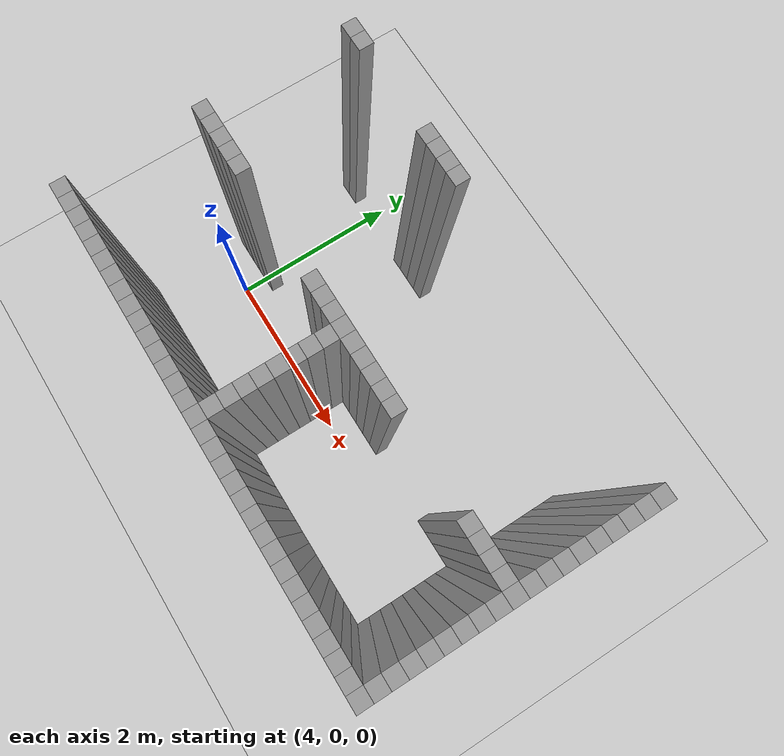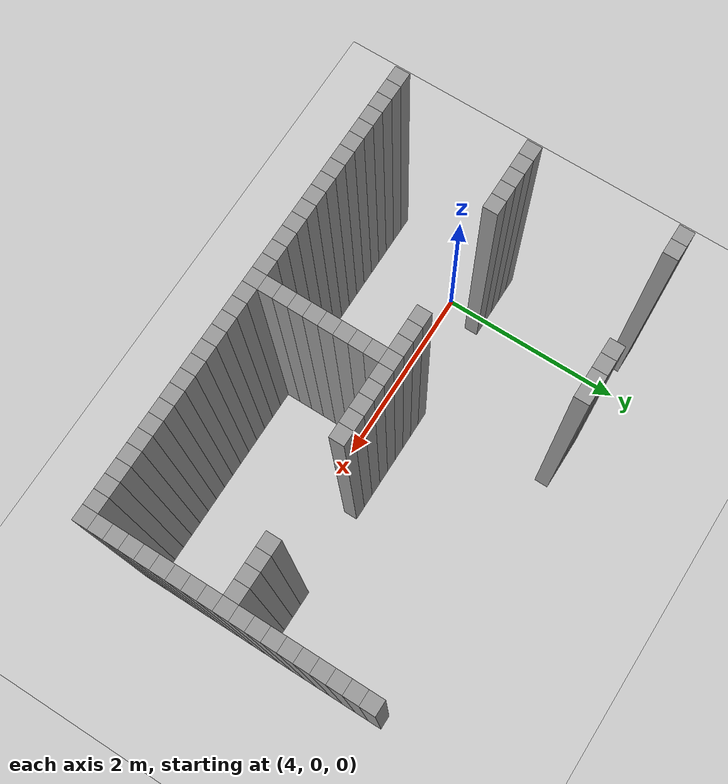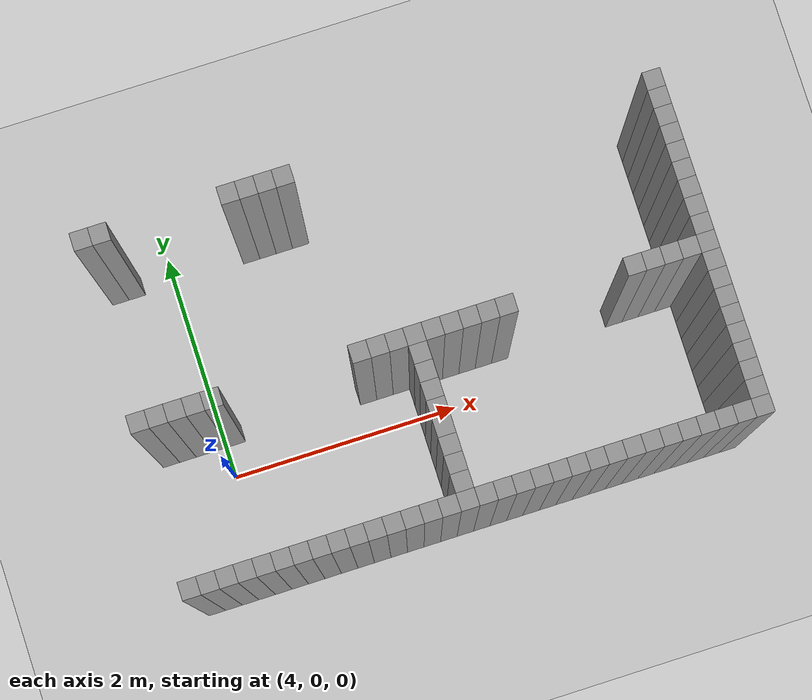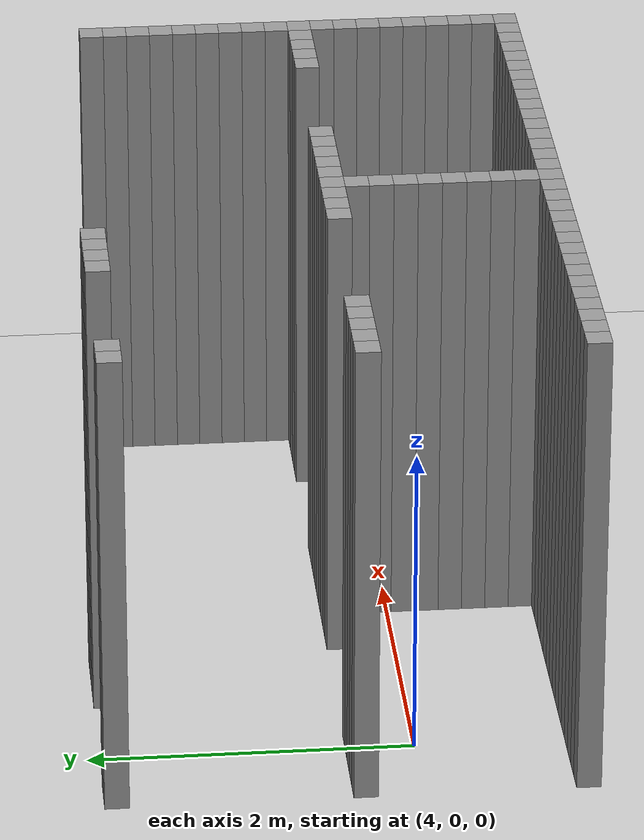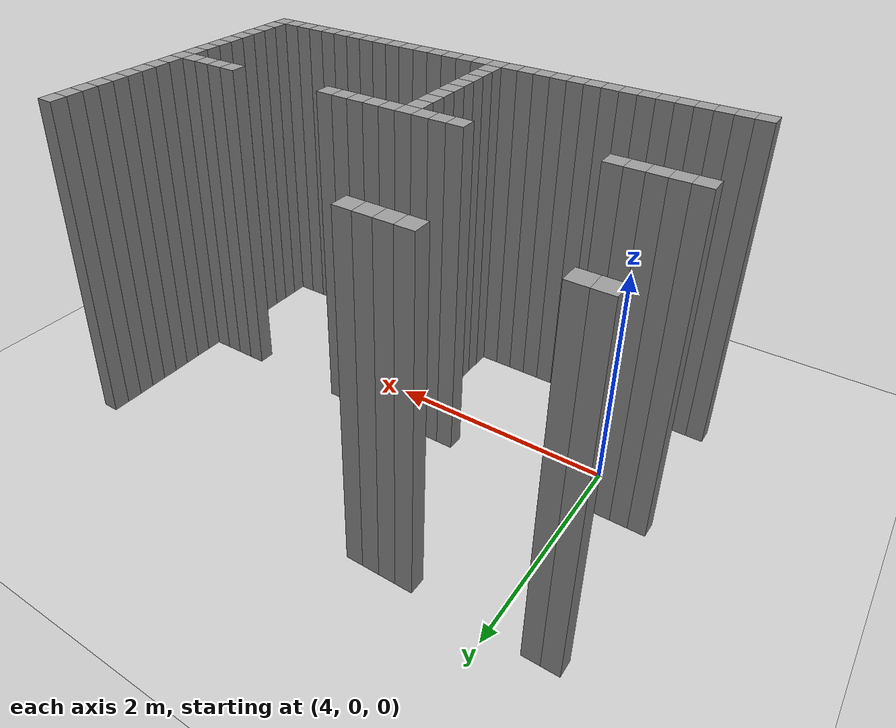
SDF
<sdf version="1.7">
 <world name="default">
  <model name="ground_plane">
   <static>1</static>
   <link name="link">
    <collision name="collision">
     <geometry><plane><normal>0 0 1</normal><size>100 100</size></plane></geometry>
     <surface>
      <contact><collide_bitmask>65535</collide_bitmask></contact>
      <friction><ode><mu>100</mu><mu2>50</mu2></ode></friction>
     </surface>
    </collision>
    <visual name="visual">
     <cast_shadows>0</cast_shadows>
     <geometry><plane><normal>0 0 1</normal><size>100 100</size></plane></geometry>
     <material>
      <script><uri>file://media/materials/scripts/gazebo.material</uri><name>Gazebo/Grey</name></script>
     </material>
    </visual>
   </link>
  </model>
  <model name="image45003">
   <pose>-1 -1 0 0 -0 0</pose>
   <link name="Wall_254">
    <collision name="Wall_254_Collision">
     <geometry><box><size>0.15 0.15 3</size></box></geometry>
     <pose>0 0 1.5 0 -0 0</pose>
    </collision>
    <visual name="Wall_254_Visual">
     <pose>0 0 1.5 0 -0 0</pose>
     <geometry><box><size>0.15 0.15 3</size></box></geometry>
     <material>
      <script><uri>file://media/materials/scripts/gazebo.material</uri><name>Gazebo/Grey</name></script>
      <ambient>1 1 1 1</ambient>
     </material>
     <meta><layer>0</layer></meta>
    </visual>
    <pose>4.5 0.0 0 0 -0 0</pose>
   </link>
   <link name="Wall_255">
    <collision name="Wall_255_Collision">
     <geometry><box><size>0.15 0.15 3</size></box></geometry>
     <pose>0 0 1.5 0 -0 0</pose>
    </collision>
    <visual name="Wall_255_Visual">
     <pose>0 0 1.5 0 -0 0</pose>
     <geometry><box><size>0.15 0.15 3</size></box></geometry>
     <material>
      <script><uri>file://media/materials/scripts/gazebo.material</uri><name>Gazebo/Grey</name></script>
      <ambient>1 1 1 1</ambient>
     </material>
     <meta><layer>0</layer></meta>
    </visual>
    <pose>4.5 1.3499999999999999 0 0 -0 0</pose>
   </link>
   <link name="Wall_256">
    <collision name="Wall_256_Collision">
     <geometry><box><size>0.15 0.15 3</size></box></geometry>
     <pose>0 0 1.5 0 -0 0</pose>
    </collision>
    <visual name="Wall_256_Visual">
     <pose>0 0 1.5 0 -0 0</pose>
     <geometry><box><size>0.15 0.15 3</size></box></geometry>
     <material>
      <script><uri>file://media/materials/scripts/gazebo.material</uri><name>Gazebo/Grey</name></script>
      <ambient>1 1 1 1</ambient>
     </material>
     <meta><layer>0</layer></meta>
    </visual>
    <pose>4.5 2.85 0 0 -0 0</pose>
   </link>
   <link name="Wall_260">
    <collision name="Wall_260_Collision">
     <geometry><box><size>0.15 0.15 3</size></box></geometry>
     <pose>0 0 1.5 0 -0 0</pose>
    </collision>
    <visual name="Wall_260_Visual">
     <pose>0 0 1.5 0 -0 0</pose>
     <geometry><box><size>0.15 0.15 3</size></box></geometry>
     <material>
      <script><uri>file://media/materials/scripts/gazebo.material</uri><name>Gazebo/Grey</name></script>
      <ambient>1 1 1 1</ambient>
     </material>
     <meta><layer>0</layer></meta>
    </visual>
    <pose>4.6499999999999995 0.0 0 0 -0 0</pose>
   </link>
   <link name="Wall_261">
    <collision name="Wall_261_Collision">
     <geometry><box><size>0.15 0.15 3</size></box></geometry>
     <pose>0 0 1.5 0 -0 0</pose>
    </collision>
    <visual name="Wall_261_Visual">
     <pose>0 0 1.5 0 -0 0</pose>
     <geometry><box><size>0.15 0.15 3</size></box></geometry>
     <material>
      <script><uri>file://media/materials/scripts/gazebo.material</uri><name>Gazebo/Grey</name></script>
      <ambient>1 1 1 1</ambient>
     </material>
     <meta><layer>0</layer></meta>
    </visual>
    <pose>4.6499999999999995 1.3499999999999999 0 0 -0 0</pose>
   </link>
   <link name="Wall_262">
    <collision name="Wall_262_Collision">
     <geometry><box><size>0.15 0.15 3</size></box></geometry>
     <pose>0 0 1.5 0 -0 0</pose>
    </collision>
    <visual name="Wall_262_Visual">
     <pose>0 0 1.5 0 -0 0</pose>
     <geometry><box><size>0.15 0.15 3</size></box></geometry>
     <material>
      <script><uri>file://media/materials/scripts/gazebo.material</uri><name>Gazebo/Grey</name></script>
      <ambient>1 1 1 1</ambient>
     </material>
     <meta><layer>0</layer></meta>
    </visual>
    <pose>4.6499999999999995 2.85 0 0 -0 0</pose>
   </link>
   <link name="Wall_266">
    <collision name="Wall_266_Collision">
     <geometry><box><size>0.15 0.15 3</size></box></geometry>
     <pose>0 0 1.5 0 -0 0</pose>
    </collision>
    <visual name="Wall_266_Visual">
     <pose>0 0 1.5 0 -0 0</pose>
     <geometry><box><size>0.15 0.15 3</size></box></geometry>
     <material>
      <script><uri>file://media/materials/scripts/gazebo.material</uri><name>Gazebo/Grey</name></script>
      <ambient>1 1 1 1</ambient>
     </material>
     <meta><layer>0</layer></meta>
    </visual>
    <pose>4.8 0.0 0 0 -0 0</pose>
   </link>
   <link name="Wall_267">
    <collision name="Wall_267_Collision">
     <geometry><box><size>0.15 0.15 3</size></box></geometry>
     <pose>0 0 1.5 0 -0 0</pose>
    </collision>
    <visual name="Wall_267_Visual">
     <pose>0 0 1.5 0 -0 0</pose>
     <geometry><box><size>0.15 0.15 3</size></box></geometry>
     <material>
      <script><uri>file://media/materials/scripts/gazebo.material</uri><name>Gazebo/Grey</name></script>
      <ambient>1 1 1 1</ambient>
     </material>
     <meta><layer>0</layer></meta>
    </visual>
    <pose>4.8 1.3499999999999999 0 0 -0 0</pose>
   </link>
   <link name="Wall_271">
    <collision name="Wall_271_Collision">
     <geometry><box><size>0.15 0.15 3</size></box></geometry>
     <pose>0 0 1.5 0 -0 0</pose>
    </collision>
    <visual name="Wall_271_Visual">
     <pose>0 0 1.5 0 -0 0</pose>
     <geometry><box><size>0.15 0.15 3</size></box></geometry>
     <material>
      <script><uri>file://media/materials/scripts/gazebo.material</uri><name>Gazebo/Grey</name></script>
      <ambient>1 1 1 1</ambient>
     </material>
     <meta><layer>0</layer></meta>
    </visual>
    <pose>4.95 0.0 0 0 -0 0</pose>
   </link>
   <link name="Wall_272">
    <collision name="Wall_272_Collision">
     <geometry><box><size>0.15 0.15 3</size></box></geometry>
     <pose>0 0 1.5 0 -0 0</pose>
    </collision>
    <visual name="Wall_272_Visual">
     <pose>0 0 1.5 0 -0 0</pose>
     <geometry><box><size>0.15 0.15 3</size></box></geometry>
     <material>
      <script><uri>file://media/materials/scripts/gazebo.material</uri><name>Gazebo/Grey</name></script>
      <ambient>1 1 1 1</ambient>
     </material>
     <meta><layer>0</layer></meta>
    </visual>
    <pose>4.95 1.3499999999999999 0 0 -0 0</pose>
   </link>
   <link name="Wall_276">
    <collision name="Wall_276_Collision">
     <geometry><box><size>0.15 0.15 3</size></box></geometry>
     <pose>0 0 1.5 0 -0 0</pose>
    </collision>
    <visual name="Wall_276_Visual">
     <pose>0 0 1.5 0 -0 0</pose>
     <geometry><box><size>0.15 0.15 3</size></box></geometry>
     <material>
      <script><uri>file://media/materials/scripts/gazebo.material</uri><name>Gazebo/Grey</name></script>
      <ambient>1 1 1 1</ambient>
     </material>
     <meta><layer>0</layer></meta>
    </visual>
    <pose>5.1 0.0 0 0 -0 0</pose>
   </link>
   <link name="Wall_277">
    <collision name="Wall_277_Collision">
     <geometry><box><size>0.15 0.15 3</size></box></geometry>
     <pose>0 0 1.5 0 -0 0</pose>
    </collision>
    <visual name="Wall_277_Visual">
     <pose>0 0 1.5 0 -0 0</pose>
     <geometry><box><size>0.15 0.15 3</size></box></geometry>
     <material>
      <script><uri>file://media/materials/scripts/gazebo.material</uri><name>Gazebo/Grey</name></script>
      <ambient>1 1 1 1</ambient>
     </material>
     <meta><layer>0</layer></meta>
    </visual>
    <pose>5.1 1.3499999999999999 0 0 -0 0</pose>
   </link>
   <link name="Wall_281">
    <collision name="Wall_281_Collision">
     <geometry><box><size>0.15 0.15 3</size></box></geometry>
     <pose>0 0 1.5 0 -0 0</pose>
    </collision>
    <visual name="Wall_281_Visual">
     <pose>0 0 1.5 0 -0 0</pose>
     <geometry><box><size>0.15 0.15 3</size></box></geometry>
     <material>
      <script><uri>file://media/materials/scripts/gazebo.material</uri><name>Gazebo/Grey</name></script>
      <ambient>1 1 1 1</ambient>
     </material>
     <meta><layer>0</layer></meta>
    </visual>
    <pose>5.25 0.0 0 0 -0 0</pose>
   </link>
   <link name="Wall_284">
    <collision name="Wall_284_Collision">
     <geometry><box><size>0.15 0.15 3</size></box></geometry>
     <pose>0 0 1.5 0 -0 0</pose>
    </collision>
    <visual name="Wall_284_Visual">
     <pose>0 0 1.5 0 -0 0</pose>
     <geometry><box><size>0.15 0.15 3</size></box></geometry>
     <material>
      <script><uri>file://media/materials/scripts/gazebo.material</uri><name>Gazebo/Grey</name></script>
      <ambient>1 1 1 1</ambient>
     </material>
     <meta><layer>0</layer></meta>
    </visual>
    <pose>5.3999999999999995 0.0 0 0 -0 0</pose>
   </link>
   <link name="Wall_287">
    <collision name="Wall_287_Collision">
     <geometry><box><size>0.15 0.15 3</size></box></geometry>
     <pose>0 0 1.5 0 -0 0</pose>
    </collision>
    <visual name="Wall_287_Visual">
     <pose>0 0 1.5 0 -0 0</pose>
     <geometry><box><size>0.15 0.15 3</size></box></geometry>
     <material>
      <script><uri>file://media/materials/scripts/gazebo.material</uri><name>Gazebo/Grey</name></script>
      <ambient>1 1 1 1</ambient>
     </material>
     <meta><layer>0</layer></meta>
    </visual>
    <pose>5.55 0.0 0 0 -0 0</pose>
   </link>
   <link name="Wall_290">
    <collision name="Wall_290_Collision">
     <geometry><box><size>0.15 0.15 3</size></box></geometry>
     <pose>0 0 1.5 0 -0 0</pose>
    </collision>
    <visual name="Wall_290_Visual">
     <pose>0 0 1.5 0 -0 0</pose>
     <geometry><box><size>0.15 0.15 3</size></box></geometry>
     <material>
      <script><uri>file://media/materials/scripts/gazebo.material</uri><name>Gazebo/Grey</name></script>
      <ambient>1 1 1 1</ambient>
     </material>
     <meta><layer>0</layer></meta>
    </visual>
    <pose>5.7 0.0 0 0 -0 0</pose>
   </link>
   <link name="Wall_291">
    <collision name="Wall_291_Collision">
     <geometry><box><size>0.15 0.15 3</size></box></geometry>
     <pose>0 0 1.5 0 -0 0</pose>
    </collision>
    <visual name="Wall_291_Visual">
     <pose>0 0 1.5 0 -0 0</pose>
     <geometry><box><size>0.15 0.15 3</size></box></geometry>
     <material>
      <script><uri>file://media/materials/scripts/gazebo.material</uri><name>Gazebo/Grey</name></script>
      <ambient>1 1 1 1</ambient>
     </material>
     <meta><layer>0</layer></meta>
    </visual>
    <pose>5.7 2.85 0 0 -0 0</pose>
   </link>
   <link name="Wall_294">
    <collision name="Wall_294_Collision">
     <geometry><box><size>0.15 0.15 3</size></box></geometry>
     <pose>0 0 1.5 0 -0 0</pose>
    </collision>
    <visual name="Wall_294_Visual">
     <pose>0 0 1.5 0 -0 0</pose>
     <geometry><box><size>0.15 0.15 3</size></box></geometry>
     <material>
      <script><uri>file://media/materials/scripts/gazebo.material</uri><name>Gazebo/Grey</name></script>
      <ambient>1 1 1 1</ambient>
     </material>
     <meta><layer>0</layer></meta>
    </visual>
    <pose>5.85 0.0 0 0 -0 0</pose>
   </link>
   <link name="Wall_295">
    <collision name="Wall_295_Collision">
     <geometry><box><size>0.15 0.15 3</size></box></geometry>
     <pose>0 0 1.5 0 -0 0</pose>
    </collision>
    <visual name="Wall_295_Visual">
     <pose>0 0 1.5 0 -0 0</pose>
     <geometry><box><size>0.15 0.15 3</size></box></geometry>
     <material>
      <script><uri>file://media/materials/scripts/gazebo.material</uri><name>Gazebo/Grey</name></script>
      <ambient>1 1 1 1</ambient>
     </material>
     <meta><layer>0</layer></meta>
    </visual>
    <pose>5.85 2.85 0 0 -0 0</pose>
   </link>
   <link name="Wall_298">
    <collision name="Wall_298_Collision">
     <geometry><box><size>0.15 0.15 3</size></box></geometry>
     <pose>0 0 1.5 0 -0 0</pose>
    </collision>
    <visual name="Wall_298_Visual">
     <pose>0 0 1.5 0 -0 0</pose>
     <geometry><box><size>0.15 0.15 3</size></box></geometry>
     <material>
      <script><uri>file://media/materials/scripts/gazebo.material</uri><name>Gazebo/Grey</name></script>
      <ambient>1 1 1 1</ambient>
     </material>
     <meta><layer>0</layer></meta>
    </visual>
    <pose>6.0 0.0 0 0 -0 0</pose>
   </link>
   <link name="Wall_299">
    <collision name="Wall_299_Collision">
     <geometry><box><size>0.15 0.15 3</size></box></geometry>
     <pose>0 0 1.5 0 -0 0</pose>
    </collision>
    <visual name="Wall_299_Visual">
     <pose>0 0 1.5 0 -0 0</pose>
     <geometry><box><size>0.15 0.15 3</size></box></geometry>
     <material>
      <script><uri>file://media/materials/scripts/gazebo.material</uri><name>Gazebo/Grey</name></script>
      <ambient>1 1 1 1</ambient>
     </material>
     <meta><layer>0</layer></meta>
    </visual>
    <pose>6.0 2.85 0 0 -0 0</pose>
   </link>
   <link name="Wall_302">
    <collision name="Wall_302_Collision">
     <geometry><box><size>0.15 0.15 3</size></box></geometry>
     <pose>0 0 1.5 0 -0 0</pose>
    </collision>
    <visual name="Wall_302_Visual">
     <pose>0 0 1.5 0 -0 0</pose>
     <geometry><box><size>0.15 0.15 3</size></box></geometry>
     <material>
      <script><uri>file://media/materials/scripts/gazebo.material</uri><name>Gazebo/Grey</name></script>
      <ambient>1 1 1 1</ambient>
     </material>
     <meta><layer>0</layer></meta>
    </visual>
    <pose>6.1499999999999995 0.0 0 0 -0 0</pose>
   </link>
   <link name="Wall_303">
    <collision name="Wall_303_Collision">
     <geometry><box><size>0.15 0.15 3</size></box></geometry>
     <pose>0 0 1.5 0 -0 0</pose>
    </collision>
    <visual name="Wall_303_Visual">
     <pose>0 0 1.5 0 -0 0</pose>
     <geometry><box><size>0.15 0.15 3</size></box></geometry>
     <material>
      <script><uri>file://media/materials/scripts/gazebo.material</uri><name>Gazebo/Grey</name></script>
      <ambient>1 1 1 1</ambient>
     </material>
     <meta><layer>0</layer></meta>
    </visual>
    <pose>6.1499999999999995 2.85 0 0 -0 0</pose>
   </link>
   <link name="Wall_306">
    <collision name="Wall_306_Collision">
     <geometry><box><size>0.15 0.15 3</size></box></geometry>
     <pose>0 0 1.5 0 -0 0</pose>
    </collision>
    <visual name="Wall_306_Visual">
     <pose>0 0 1.5 0 -0 0</pose>
     <geometry><box><size>0.15 0.15 3</size></box></geometry>
     <material>
      <script><uri>file://media/materials/scripts/gazebo.material</uri><name>Gazebo/Grey</name></script>
      <ambient>1 1 1 1</ambient>
     </material>
     <meta><layer>0</layer></meta>
    </visual>
    <pose>6.3 0.0 0 0 -0 0</pose>
   </link>
   <link name="Wall_307">
    <collision name="Wall_307_Collision">
     <geometry><box><size>0.15 0.15 3</size></box></geometry>
     <pose>0 0 1.5 0 -0 0</pose>
    </collision>
    <visual name="Wall_307_Visual">
     <pose>0 0 1.5 0 -0 0</pose>
     <geometry><box><size>0.15 0.15 3</size></box></geometry>
     <material>
      <script><uri>file://media/materials/scripts/gazebo.material</uri><name>Gazebo/Grey</name></script>
      <ambient>1 1 1 1</ambient>
     </material>
     <meta><layer>0</layer></meta>
    </visual>
    <pose>6.3 1.3499999999999999 0 0 -0 0</pose>
   </link>
   <link name="Wall_327">
    <collision name="Wall_327_Collision">
     <geometry><box><size>0.15 0.15 3</size></box></geometry>
     <pose>0 0 1.5 0 -0 0</pose>
    </collision>
    <visual name="Wall_327_Visual">
     <pose>0 0 1.5 0 -0 0</pose>
     <geometry><box><size>0.15 0.15 3</size></box></geometry>
     <material>
      <script><uri>file://media/materials/scripts/gazebo.material</uri><name>Gazebo/Grey</name></script>
      <ambient>1 1 1 1</ambient>
     </material>
     <meta><layer>0</layer></meta>
    </visual>
    <pose>6.45 0.0 0 0 -0 0</pose>
   </link>
   <link name="Wall_328">
    <collision name="Wall_328_Collision">
     <geometry><box><size>0.15 0.15 3</size></box></geometry>
     <pose>0 0 1.5 0 -0 0</pose>
    </collision>
    <visual name="Wall_328_Visual">
     <pose>0 0 1.5 0 -0 0</pose>
     <geometry><box><size>0.15 0.15 3</size></box></geometry>
     <material>
      <script><uri>file://media/materials/scripts/gazebo.material</uri><name>Gazebo/Grey</name></script>
      <ambient>1 1 1 1</ambient>
     </material>
     <meta><layer>0</layer></meta>
    </visual>
    <pose>6.45 1.3499999999999999 0 0 -0 0</pose>
   </link>
   <link name="Wall_331">
    <collision name="Wall_331_Collision">
     <geometry><box><size>0.15 0.15 3</size></box></geometry>
     <pose>0 0 1.5 0 -0 0</pose>
    </collision>
    <visual name="Wall_331_Visual">
     <pose>0 0 1.5 0 -0 0</pose>
     <geometry><box><size>0.15 0.15 3</size></box></geometry>
     <material>
      <script><uri>file://media/materials/scripts/gazebo.material</uri><name>Gazebo/Grey</name></script>
      <ambient>1 1 1 1</ambient>
     </material>
     <meta><layer>0</layer></meta>
    </visual>
    <pose>6.6 0.0 0 0 -0 0</pose>
   </link>
   <link name="Wall_332">
    <collision name="Wall_332_Collision">
     <geometry><box><size>0.15 0.15 3</size></box></geometry>
     <pose>0 0 1.5 0 -0 0</pose>
    </collision>
    <visual name="Wall_332_Visual">
     <pose>0 0 1.5 0 -0 0</pose>
     <geometry><box><size>0.15 0.15 3</size></box></geometry>
     <material>
      <script><uri>file://media/materials/scripts/gazebo.material</uri><name>Gazebo/Grey</name></script>
      <ambient>1 1 1 1</ambient>
     </material>
     <meta><layer>0</layer></meta>
    </visual>
    <pose>6.6 1.3499999999999999 0 0 -0 0</pose>
   </link>
   <link name="Wall_335">
    <collision name="Wall_335_Collision">
     <geometry><box><size>0.15 0.15 3</size></box></geometry>
     <pose>0 0 1.5 0 -0 0</pose>
    </collision>
    <visual name="Wall_335_Visual">
     <pose>0 0 1.5 0 -0 0</pose>
     <geometry><box><size>0.15 0.15 3</size></box></geometry>
     <material>
      <script><uri>file://media/materials/scripts/gazebo.material</uri><name>Gazebo/Grey</name></script>
      <ambient>1 1 1 1</ambient>
     </material>
     <meta><layer>0</layer></meta>
    </visual>
    <pose>6.75 0.0 0 0 -0 0</pose>
   </link>
   <link name="Wall_336">
    <collision name="Wall_336_Collision">
     <geometry><box><size>0.15 0.15 3</size></box></geometry>
     <pose>0 0 1.5 0 -0 0</pose>
    </collision>
    <visual name="Wall_336_Visual">
     <pose>0 0 1.5 0 -0 0</pose>
     <geometry><box><size>0.15 0.15 3</size></box></geometry>
     <material>
      <script><uri>file://media/materials/scripts/gazebo.material</uri><name>Gazebo/Grey</name></script>
      <ambient>1 1 1 1</ambient>
     </material>
     <meta><layer>0</layer></meta>
    </visual>
    <pose>6.75 0.15 0 0 -0 0</pose>
   </link>
   <link name="Wall_337">
    <collision name="Wall_337_Collision">
     <geometry><box><size>0.15 0.15 3</size></box></geometry>
     <pose>0 0 1.5 0 -0 0</pose>
    </collision>
    <visual name="Wall_337_Visual">
     <pose>0 0 1.5 0 -0 0</pose>
     <geometry><box><size>0.15 0.15 3</size></box></geometry>
     <material>
      <script><uri>file://media/materials/scripts/gazebo.material</uri><name>Gazebo/Grey</name></script>
      <ambient>1 1 1 1</ambient>
     </material>
     <meta><layer>0</layer></meta>
    </visual>
    <pose>6.75 0.3 0 0 -0 0</pose>
   </link>
   <link name="Wall_338">
    <collision name="Wall_338_Collision">
     <geometry><box><size>0.15 0.15 3</size></box></geometry>
     <pose>0 0 1.5 0 -0 0</pose>
    </collision>
    <visual name="Wall_338_Visual">
     <pose>0 0 1.5 0 -0 0</pose>
     <geometry><box><size>0.15 0.15 3</size></box></geometry>
     <material>
      <script><uri>file://media/materials/scripts/gazebo.material</uri><name>Gazebo/Grey</name></script>
      <ambient>1 1 1 1</ambient>
     </material>
     <meta><layer>0</layer></meta>
    </visual>
    <pose>6.75 0.44999999999999996 0 0 -0 0</pose>
   </link>
   <link name="Wall_339">
    <collision name="Wall_339_Collision">
     <geometry><box><size>0.15 0.15 3</size></box></geometry>
     <pose>0 0 1.5 0 -0 0</pose>
    </collision>
    <visual name="Wall_339_Visual">
     <pose>0 0 1.5 0 -0 0</pose>
     <geometry><box><size>0.15 0.15 3</size></box></geometry>
     <material>
      <script><uri>file://media/materials/scripts/gazebo.material</uri><name>Gazebo/Grey</name></script>
      <ambient>1 1 1 1</ambient>
     </material>
     <meta><layer>0</layer></meta>
    </visual>
    <pose>6.75 0.6 0 0 -0 0</pose>
   </link>
   <link name="Wall_340">
    <collision name="Wall_340_Collision">
     <geometry><box><size>0.15 0.15 3</size></box></geometry>
     <pose>0 0 1.5 0 -0 0</pose>
    </collision>
    <visual name="Wall_340_Visual">
     <pose>0 0 1.5 0 -0 0</pose>
     <geometry><box><size>0.15 0.15 3</size></box></geometry>
     <material>
      <script><uri>file://media/materials/scripts/gazebo.material</uri><name>Gazebo/Grey</name></script>
      <ambient>1 1 1 1</ambient>
     </material>
     <meta><layer>0</layer></meta>
    </visual>
    <pose>6.75 0.75 0 0 -0 0</pose>
   </link>
   <link name="Wall_341">
    <collision name="Wall_341_Collision">
     <geometry><box><size>0.15 0.15 3</size></box></geometry>
     <pose>0 0 1.5 0 -0 0</pose>
    </collision>
    <visual name="Wall_341_Visual">
     <pose>0 0 1.5 0 -0 0</pose>
     <geometry><box><size>0.15 0.15 3</size></box></geometry>
     <material>
      <script><uri>file://media/materials/scripts/gazebo.material</uri><name>Gazebo/Grey</name></script>
      <ambient>1 1 1 1</ambient>
     </material>
     <meta><layer>0</layer></meta>
    </visual>
    <pose>6.75 0.8999999999999999 0 0 -0 0</pose>
   </link>
   <link name="Wall_342">
    <collision name="Wall_342_Collision">
     <geometry><box><size>0.15 0.15 3</size></box></geometry>
     <pose>0 0 1.5 0 -0 0</pose>
    </collision>
    <visual name="Wall_342_Visual">
     <pose>0 0 1.5 0 -0 0</pose>
     <geometry><box><size>0.15 0.15 3</size></box></geometry>
     <material>
      <script><uri>file://media/materials/scripts/gazebo.material</uri><name>Gazebo/Grey</name></script>
      <ambient>1 1 1 1</ambient>
     </material>
     <meta><layer>0</layer></meta>
    </visual>
    <pose>6.75 1.05 0 0 -0 0</pose>
   </link>
   <link name="Wall_343">
    <collision name="Wall_343_Collision">
     <geometry><box><size>0.15 0.15 3</size></box></geometry>
     <pose>0 0 1.5 0 -0 0</pose>
    </collision>
    <visual name="Wall_343_Visual">
     <pose>0 0 1.5 0 -0 0</pose>
     <geometry><box><size>0.15 0.15 3</size></box></geometry>
     <material>
      <script><uri>file://media/materials/scripts/gazebo.material</uri><name>Gazebo/Grey</name></script>
      <ambient>1 1 1 1</ambient>
     </material>
     <meta><layer>0</layer></meta>
    </visual>
    <pose>6.75 1.2 0 0 -0 0</pose>
   </link>
   <link name="Wall_344">
    <collision name="Wall_344_Collision">
     <geometry><box><size>0.15 0.15 3</size></box></geometry>
     <pose>0 0 1.5 0 -0 0</pose>
    </collision>
    <visual name="Wall_344_Visual">
     <pose>0 0 1.5 0 -0 0</pose>
     <geometry><box><size>0.15 0.15 3</size></box></geometry>
     <material>
      <script><uri>file://media/materials/scripts/gazebo.material</uri><name>Gazebo/Grey</name></script>
      <ambient>1 1 1 1</ambient>
     </material>
     <meta><layer>0</layer></meta>
    </visual>
    <pose>6.75 1.3499999999999999 0 0 -0 0</pose>
   </link>
   <link name="Wall_360">
    <collision name="Wall_360_Collision">
     <geometry><box><size>0.15 0.15 3</size></box></geometry>
     <pose>0 0 1.5 0 -0 0</pose>
    </collision>
    <visual name="Wall_360_Visual">
     <pose>0 0 1.5 0 -0 0</pose>
     <geometry><box><size>0.15 0.15 3</size></box></geometry>
     <material>
      <script><uri>file://media/materials/scripts/gazebo.material</uri><name>Gazebo/Grey</name></script>
      <ambient>1 1 1 1</ambient>
     </material>
     <meta><layer>0</layer></meta>
    </visual>
    <pose>6.8999999999999995 0.0 0 0 -0 0</pose>
   </link>
   <link name="Wall_361">
    <collision name="Wall_361_Collision">
     <geometry><box><size>0.15 0.15 3</size></box></geometry>
     <pose>0 0 1.5 0 -0 0</pose>
    </collision>
    <visual name="Wall_361_Visual">
     <pose>0 0 1.5 0 -0 0</pose>
     <geometry><box><size>0.15 0.15 3</size></box></geometry>
     <material>
      <script><uri>file://media/materials/scripts/gazebo.material</uri><name>Gazebo/Grey</name></script>
      <ambient>1 1 1 1</ambient>
     </material>
     <meta><layer>0</layer></meta>
    </visual>
    <pose>6.8999999999999995 1.3499999999999999 0 0 -0 0</pose>
   </link>
   <link name="Wall_364">
    <collision name="Wall_364_Collision">
     <geometry><box><size>0.15 0.15 3</size></box></geometry>
     <pose>0 0 1.5 0 -0 0</pose>
    </collision>
    <visual name="Wall_364_Visual">
     <pose>0 0 1.5 0 -0 0</pose>
     <geometry><box><size>0.15 0.15 3</size></box></geometry>
     <material>
      <script><uri>file://media/materials/scripts/gazebo.material</uri><name>Gazebo/Grey</name></script>
      <ambient>1 1 1 1</ambient>
     </material>
     <meta><layer>0</layer></meta>
    </visual>
    <pose>7.05 0.0 0 0 -0 0</pose>
   </link>
   <link name="Wall_365">
    <collision name="Wall_365_Collision">
     <geometry><box><size>0.15 0.15 3</size></box></geometry>
     <pose>0 0 1.5 0 -0 0</pose>
    </collision>
    <visual name="Wall_365_Visual">
     <pose>0 0 1.5 0 -0 0</pose>
     <geometry><box><size>0.15 0.15 3</size></box></geometry>
     <material>
      <script><uri>file://media/materials/scripts/gazebo.material</uri><name>Gazebo/Grey</name></script>
      <ambient>1 1 1 1</ambient>
     </material>
     <meta><layer>0</layer></meta>
    </visual>
    <pose>7.05 1.3499999999999999 0 0 -0 0</pose>
   </link>
   <link name="Wall_368">
    <collision name="Wall_368_Collision">
     <geometry><box><size>0.15 0.15 3</size></box></geometry>
     <pose>0 0 1.5 0 -0 0</pose>
    </collision>
    <visual name="Wall_368_Visual">
     <pose>0 0 1.5 0 -0 0</pose>
     <geometry><box><size>0.15 0.15 3</size></box></geometry>
     <material>
      <script><uri>file://media/materials/scripts/gazebo.material</uri><name>Gazebo/Grey</name></script>
      <ambient>1 1 1 1</ambient>
     </material>
     <meta><layer>0</layer></meta>
    </visual>
    <pose>7.199999999999999 0.0 0 0 -0 0</pose>
   </link>
   <link name="Wall_369">
    <collision name="Wall_369_Collision">
     <geometry><box><size>0.15 0.15 3</size></box></geometry>
     <pose>0 0 1.5 0 -0 0</pose>
    </collision>
    <visual name="Wall_369_Visual">
     <pose>0 0 1.5 0 -0 0</pose>
     <geometry><box><size>0.15 0.15 3</size></box></geometry>
     <material>
      <script><uri>file://media/materials/scripts/gazebo.material</uri><name>Gazebo/Grey</name></script>
      <ambient>1 1 1 1</ambient>
     </material>
     <meta><layer>0</layer></meta>
    </visual>
    <pose>7.199999999999999 1.3499999999999999 0 0 -0 0</pose>
   </link>
   <link name="Wall_371">
    <collision name="Wall_371_Collision">
     <geometry><box><size>0.15 0.15 3</size></box></geometry>
     <pose>0 0 1.5 0 -0 0</pose>
    </collision>
    <visual name="Wall_371_Visual">
     <pose>0 0 1.5 0 -0 0</pose>
     <geometry><box><size>0.15 0.15 3</size></box></geometry>
     <material>
      <script><uri>file://media/materials/scripts/gazebo.material</uri><name>Gazebo/Grey</name></script>
      <ambient>1 1 1 1</ambient>
     </material>
     <meta><layer>0</layer></meta>
    </visual>
    <pose>7.35 0.0 0 0 -0 0</pose>
   </link>
   <link name="Wall_372">
    <collision name="Wall_372_Collision">
     <geometry><box><size>0.15 0.15 3</size></box></geometry>
     <pose>0 0 1.5 0 -0 0</pose>
    </collision>
    <visual name="Wall_372_Visual">
     <pose>0 0 1.5 0 -0 0</pose>
     <geometry><box><size>0.15 0.15 3</size></box></geometry>
     <material>
      <script><uri>file://media/materials/scripts/gazebo.material</uri><name>Gazebo/Grey</name></script>
      <ambient>1 1 1 1</ambient>
     </material>
     <meta><layer>0</layer></meta>
    </visual>
    <pose>7.35 1.3499999999999999 0 0 -0 0</pose>
   </link>
   <link name="Wall_374">
    <collision name="Wall_374_Collision">
     <geometry><box><size>0.15 0.15 3</size></box></geometry>
     <pose>0 0 1.5 0 -0 0</pose>
    </collision>
    <visual name="Wall_374_Visual">
     <pose>0 0 1.5 0 -0 0</pose>
     <geometry><box><size>0.15 0.15 3</size></box></geometry>
     <material>
      <script><uri>file://media/materials/scripts/gazebo.material</uri><name>Gazebo/Grey</name></script>
      <ambient>1 1 1 1</ambient>
     </material>
     <meta><layer>0</layer></meta>
    </visual>
    <pose>7.5 0.0 0 0 -0 0</pose>
   </link>
   <link name="Wall_375">
    <collision name="Wall_375_Collision">
     <geometry><box><size>0.15 0.15 3</size></box></geometry>
     <pose>0 0 1.5 0 -0 0</pose>
    </collision>
    <visual name="Wall_375_Visual">
     <pose>0 0 1.5 0 -0 0</pose>
     <geometry><box><size>0.15 0.15 3</size></box></geometry>
     <material>
      <script><uri>file://media/materials/scripts/gazebo.material</uri><name>Gazebo/Grey</name></script>
      <ambient>1 1 1 1</ambient>
     </material>
     <meta><layer>0</layer></meta>
    </visual>
    <pose>7.5 1.3499999999999999 0 0 -0 0</pose>
   </link>
   <link name="Wall_388">
    <collision name="Wall_388_Collision">
     <geometry><box><size>0.15 0.15 3</size></box></geometry>
     <pose>0 0 1.5 0 -0 0</pose>
    </collision>
    <visual name="Wall_388_Visual">
     <pose>0 0 1.5 0 -0 0</pose>
     <geometry><box><size>0.15 0.15 3</size></box></geometry>
     <material>
      <script><uri>file://media/materials/scripts/gazebo.material</uri><name>Gazebo/Grey</name></script>
      <ambient>1 1 1 1</ambient>
     </material>
     <meta><layer>0</layer></meta>
    </visual>
    <pose>7.6499999999999995 0.0 0 0 -0 0</pose>
   </link>
   <link name="Wall_392">
    <collision name="Wall_392_Collision">
     <geometry><box><size>0.15 0.15 3</size></box></geometry>
     <pose>0 0 1.5 0 -0 0</pose>
    </collision>
    <visual name="Wall_392_Visual">
     <pose>0 0 1.5 0 -0 0</pose>
     <geometry><box><size>0.15 0.15 3</size></box></geometry>
     <material>
      <script><uri>file://media/materials/scripts/gazebo.material</uri><name>Gazebo/Grey</name></script>
      <ambient>1 1 1 1</ambient>
     </material>
     <meta><layer>0</layer></meta>
    </visual>
    <pose>7.8 0.0 0 0 -0 0</pose>
   </link>
   <link name="Wall_396">
    <collision name="Wall_396_Collision">
     <geometry><box><size>0.15 0.15 3</size></box></geometry>
     <pose>0 0 1.5 0 -0 0</pose>
    </collision>
    <visual name="Wall_396_Visual">
     <pose>0 0 1.5 0 -0 0</pose>
     <geometry><box><size>0.15 0.15 3</size></box></geometry>
     <material>
      <script><uri>file://media/materials/scripts/gazebo.material</uri><name>Gazebo/Grey</name></script>
      <ambient>1 1 1 1</ambient>
     </material>
     <meta><layer>0</layer></meta>
    </visual>
    <pose>7.949999999999999 0.0 0 0 -0 0</pose>
   </link>
   <link name="Wall_400">
    <collision name="Wall_400_Collision">
     <geometry><box><size>0.15 0.15 3</size></box></geometry>
     <pose>0 0 1.5 0 -0 0</pose>
    </collision>
    <visual name="Wall_400_Visual">
     <pose>0 0 1.5 0 -0 0</pose>
     <geometry><box><size>0.15 0.15 3</size></box></geometry>
     <material>
      <script><uri>file://media/materials/scripts/gazebo.material</uri><name>Gazebo/Grey</name></script>
      <ambient>1 1 1 1</ambient>
     </material>
     <meta><layer>0</layer></meta>
    </visual>
    <pose>8.1 0.0 0 0 -0 0</pose>
   </link>
   <link name="Wall_404">
    <collision name="Wall_404_Collision">
     <geometry><box><size>0.15 0.15 3</size></box></geometry>
     <pose>0 0 1.5 0 -0 0</pose>
    </collision>
    <visual name="Wall_404_Visual">
     <pose>0 0 1.5 0 -0 0</pose>
     <geometry><box><size>0.15 0.15 3</size></box></geometry>
     <material>
      <script><uri>file://media/materials/scripts/gazebo.material</uri><name>Gazebo/Grey</name></script>
      <ambient>1 1 1 1</ambient>
     </material>
     <meta><layer>0</layer></meta>
    </visual>
    <pose>8.25 0.0 0 0 -0 0</pose>
   </link>
   <link name="Wall_408">
    <collision name="Wall_408_Collision">
     <geometry><box><size>0.15 0.15 3</size></box></geometry>
     <pose>0 0 1.5 0 -0 0</pose>
    </collision>
    <visual name="Wall_408_Visual">
     <pose>0 0 1.5 0 -0 0</pose>
     <geometry><box><size>0.15 0.15 3</size></box></geometry>
     <material>
      <script><uri>file://media/materials/scripts/gazebo.material</uri><name>Gazebo/Grey</name></script>
      <ambient>1 1 1 1</ambient>
     </material>
     <meta><layer>0</layer></meta>
    </visual>
    <pose>8.4 0.0 0 0 -0 0</pose>
   </link>
   <link name="Wall_413">
    <collision name="Wall_413_Collision">
     <geometry><box><size>0.15 0.15 3</size></box></geometry>
     <pose>0 0 1.5 0 -0 0</pose>
    </collision>
    <visual name="Wall_413_Visual">
     <pose>0 0 1.5 0 -0 0</pose>
     <geometry><box><size>0.15 0.15 3</size></box></geometry>
     <material>
      <script><uri>file://media/materials/scripts/gazebo.material</uri><name>Gazebo/Grey</name></script>
      <ambient>1 1 1 1</ambient>
     </material>
     <meta><layer>0</layer></meta>
    </visual>
    <pose>8.549999999999999 0.0 0 0 -0 0</pose>
   </link>
   <link name="Wall_414">
    <collision name="Wall_414_Collision">
     <geometry><box><size>0.15 0.15 3</size></box></geometry>
     <pose>0 0 1.5 0 -0 0</pose>
    </collision>
    <visual name="Wall_414_Visual">
     <pose>0 0 1.5 0 -0 0</pose>
     <geometry><box><size>0.15 0.15 3</size></box></geometry>
     <material>
      <script><uri>file://media/materials/scripts/gazebo.material</uri><name>Gazebo/Grey</name></script>
      <ambient>1 1 1 1</ambient>
     </material>
     <meta><layer>0</layer></meta>
    </visual>
    <pose>8.549999999999999 1.3499999999999999 0 0 -0 0</pose>
   </link>
   <link name="Wall_419">
    <collision name="Wall_419_Collision">
     <geometry><box><size>0.15 0.15 3</size></box></geometry>
     <pose>0 0 1.5 0 -0 0</pose>
    </collision>
    <visual name="Wall_419_Visual">
     <pose>0 0 1.5 0 -0 0</pose>
     <geometry><box><size>0.15 0.15 3</size></box></geometry>
     <material>
      <script><uri>file://media/materials/scripts/gazebo.material</uri><name>Gazebo/Grey</name></script>
      <ambient>1 1 1 1</ambient>
     </material>
     <meta><layer>0</layer></meta>
    </visual>
    <pose>8.7 0.0 0 0 -0 0</pose>
   </link>
   <link name="Wall_420">
    <collision name="Wall_420_Collision">
     <geometry><box><size>0.15 0.15 3</size></box></geometry>
     <pose>0 0 1.5 0 -0 0</pose>
    </collision>
    <visual name="Wall_420_Visual">
     <pose>0 0 1.5 0 -0 0</pose>
     <geometry><box><size>0.15 0.15 3</size></box></geometry>
     <material>
      <script><uri>file://media/materials/scripts/gazebo.material</uri><name>Gazebo/Grey</name></script>
      <ambient>1 1 1 1</ambient>
     </material>
     <meta><layer>0</layer></meta>
    </visual>
    <pose>8.7 1.3499999999999999 0 0 -0 0</pose>
   </link>
   <link name="Wall_425">
    <collision name="Wall_425_Collision">
     <geometry><box><size>0.15 0.15 3</size></box></geometry>
     <pose>0 0 1.5 0 -0 0</pose>
    </collision>
    <visual name="Wall_425_Visual">
     <pose>0 0 1.5 0 -0 0</pose>
     <geometry><box><size>0.15 0.15 3</size></box></geometry>
     <material>
      <script><uri>file://media/materials/scripts/gazebo.material</uri><name>Gazebo/Grey</name></script>
      <ambient>1 1 1 1</ambient>
     </material>
     <meta><layer>0</layer></meta>
    </visual>
    <pose>8.85 0.0 0 0 -0 0</pose>
   </link>
   <link name="Wall_426">
    <collision name="Wall_426_Collision">
     <geometry><box><size>0.15 0.15 3</size></box></geometry>
     <pose>0 0 1.5 0 -0 0</pose>
    </collision>
    <visual name="Wall_426_Visual">
     <pose>0 0 1.5 0 -0 0</pose>
     <geometry><box><size>0.15 0.15 3</size></box></geometry>
     <material>
      <script><uri>file://media/materials/scripts/gazebo.material</uri><name>Gazebo/Grey</name></script>
      <ambient>1 1 1 1</ambient>
     </material>
     <meta><layer>0</layer></meta>
    </visual>
    <pose>8.85 1.3499999999999999 0 0 -0 0</pose>
   </link>
   <link name="Wall_431">
    <collision name="Wall_431_Collision">
     <geometry><box><size>0.15 0.15 3</size></box></geometry>
     <pose>0 0 1.5 0 -0 0</pose>
    </collision>
    <visual name="Wall_431_Visual">
     <pose>0 0 1.5 0 -0 0</pose>
     <geometry><box><size>0.15 0.15 3</size></box></geometry>
     <material>
      <script><uri>file://media/materials/scripts/gazebo.material</uri><name>Gazebo/Grey</name></script>
      <ambient>1 1 1 1</ambient>
     </material>
     <meta><layer>0</layer></meta>
    </visual>
    <pose>9.0 0.0 0 0 -0 0</pose>
   </link>
   <link name="Wall_432">
    <collision name="Wall_432_Collision">
     <geometry><box><size>0.15 0.15 3</size></box></geometry>
     <pose>0 0 1.5 0 -0 0</pose>
    </collision>
    <visual name="Wall_432_Visual">
     <pose>0 0 1.5 0 -0 0</pose>
     <geometry><box><size>0.15 0.15 3</size></box></geometry>
     <material>
      <script><uri>file://media/materials/scripts/gazebo.material</uri><name>Gazebo/Grey</name></script>
      <ambient>1 1 1 1</ambient>
     </material>
     <meta><layer>0</layer></meta>
    </visual>
    <pose>9.0 1.3499999999999999 0 0 -0 0</pose>
   </link>
   <link name="Wall_437">
    <collision name="Wall_437_Collision">
     <geometry><box><size>0.15 0.15 3</size></box></geometry>
     <pose>0 0 1.5 0 -0 0</pose>
    </collision>
    <visual name="Wall_437_Visual">
     <pose>0 0 1.5 0 -0 0</pose>
     <geometry><box><size>0.15 0.15 3</size></box></geometry>
     <material>
      <script><uri>file://media/materials/scripts/gazebo.material</uri><name>Gazebo/Grey</name></script>
      <ambient>1 1 1 1</ambient>
     </material>
     <meta><layer>0</layer></meta>
    </visual>
    <pose>9.15 0.0 0 0 -0 0</pose>
   </link>
   <link name="Wall_438">
    <collision name="Wall_438_Collision">
     <geometry><box><size>0.15 0.15 3</size></box></geometry>
     <pose>0 0 1.5 0 -0 0</pose>
    </collision>
    <visual name="Wall_438_Visual">
     <pose>0 0 1.5 0 -0 0</pose>
     <geometry><box><size>0.15 0.15 3</size></box></geometry>
     <material>
      <script><uri>file://media/materials/scripts/gazebo.material</uri><name>Gazebo/Grey</name></script>
      <ambient>1 1 1 1</ambient>
     </material>
     <meta><layer>0</layer></meta>
    </visual>
    <pose>9.15 0.15 0 0 -0 0</pose>
   </link>
   <link name="Wall_439">
    <collision name="Wall_439_Collision">
     <geometry><box><size>0.15 0.15 3</size></box></geometry>
     <pose>0 0 1.5 0 -0 0</pose>
    </collision>
    <visual name="Wall_439_Visual">
     <pose>0 0 1.5 0 -0 0</pose>
     <geometry><box><size>0.15 0.15 3</size></box></geometry>
     <material>
      <script><uri>file://media/materials/scripts/gazebo.material</uri><name>Gazebo/Grey</name></script>
      <ambient>1 1 1 1</ambient>
     </material>
     <meta><layer>0</layer></meta>
    </visual>
    <pose>9.15 0.3 0 0 -0 0</pose>
   </link>
   <link name="Wall_440">
    <collision name="Wall_440_Collision">
     <geometry><box><size>0.15 0.15 3</size></box></geometry>
     <pose>0 0 1.5 0 -0 0</pose>
    </collision>
    <visual name="Wall_440_Visual">
     <pose>0 0 1.5 0 -0 0</pose>
     <geometry><box><size>0.15 0.15 3</size></box></geometry>
     <material>
      <script><uri>file://media/materials/scripts/gazebo.material</uri><name>Gazebo/Grey</name></script>
      <ambient>1 1 1 1</ambient>
     </material>
     <meta><layer>0</layer></meta>
    </visual>
    <pose>9.15 0.44999999999999996 0 0 -0 0</pose>
   </link>
   <link name="Wall_441">
    <collision name="Wall_441_Collision">
     <geometry><box><size>0.15 0.15 3</size></box></geometry>
     <pose>0 0 1.5 0 -0 0</pose>
    </collision>
    <visual name="Wall_441_Visual">
     <pose>0 0 1.5 0 -0 0</pose>
     <geometry><box><size>0.15 0.15 3</size></box></geometry>
     <material>
      <script><uri>file://media/materials/scripts/gazebo.material</uri><name>Gazebo/Grey</name></script>
      <ambient>1 1 1 1</ambient>
     </material>
     <meta><layer>0</layer></meta>
    </visual>
    <pose>9.15 0.6 0 0 -0 0</pose>
   </link>
   <link name="Wall_442">
    <collision name="Wall_442_Collision">
     <geometry><box><size>0.15 0.15 3</size></box></geometry>
     <pose>0 0 1.5 0 -0 0</pose>
    </collision>
    <visual name="Wall_442_Visual">
     <pose>0 0 1.5 0 -0 0</pose>
     <geometry><box><size>0.15 0.15 3</size></box></geometry>
     <material>
      <script><uri>file://media/materials/scripts/gazebo.material</uri><name>Gazebo/Grey</name></script>
      <ambient>1 1 1 1</ambient>
     </material>
     <meta><layer>0</layer></meta>
    </visual>
    <pose>9.15 0.75 0 0 -0 0</pose>
   </link>
   <link name="Wall_443">
    <collision name="Wall_443_Collision">
     <geometry><box><size>0.15 0.15 3</size></box></geometry>
     <pose>0 0 1.5 0 -0 0</pose>
    </collision>
    <visual name="Wall_443_Visual">
     <pose>0 0 1.5 0 -0 0</pose>
     <geometry><box><size>0.15 0.15 3</size></box></geometry>
     <material>
      <script><uri>file://media/materials/scripts/gazebo.material</uri><name>Gazebo/Grey</name></script>
      <ambient>1 1 1 1</ambient>
     </material>
     <meta><layer>0</layer></meta>
    </visual>
    <pose>9.15 0.8999999999999999 0 0 -0 0</pose>
   </link>
   <link name="Wall_444">
    <collision name="Wall_444_Collision">
     <geometry><box><size>0.15 0.15 3</size></box></geometry>
     <pose>0 0 1.5 0 -0 0</pose>
    </collision>
    <visual name="Wall_444_Visual">
     <pose>0 0 1.5 0 -0 0</pose>
     <geometry><box><size>0.15 0.15 3</size></box></geometry>
     <material>
      <script><uri>file://media/materials/scripts/gazebo.material</uri><name>Gazebo/Grey</name></script>
      <ambient>1 1 1 1</ambient>
     </material>
     <meta><layer>0</layer></meta>
    </visual>
    <pose>9.15 1.05 0 0 -0 0</pose>
   </link>
   <link name="Wall_445">
    <collision name="Wall_445_Collision">
     <geometry><box><size>0.15 0.15 3</size></box></geometry>
     <pose>0 0 1.5 0 -0 0</pose>
    </collision>
    <visual name="Wall_445_Visual">
     <pose>0 0 1.5 0 -0 0</pose>
     <geometry><box><size>0.15 0.15 3</size></box></geometry>
     <material>
      <script><uri>file://media/materials/scripts/gazebo.material</uri><name>Gazebo/Grey</name></script>
      <ambient>1 1 1 1</ambient>
     </material>
     <meta><layer>0</layer></meta>
    </visual>
    <pose>9.15 1.2 0 0 -0 0</pose>
   </link>
   <link name="Wall_446">
    <collision name="Wall_446_Collision">
     <geometry><box><size>0.15 0.15 3</size></box></geometry>
     <pose>0 0 1.5 0 -0 0</pose>
    </collision>
    <visual name="Wall_446_Visual">
     <pose>0 0 1.5 0 -0 0</pose>
     <geometry><box><size>0.15 0.15 3</size></box></geometry>
     <material>
      <script><uri>file://media/materials/scripts/gazebo.material</uri><name>Gazebo/Grey</name></script>
      <ambient>1 1 1 1</ambient>
     </material>
     <meta><layer>0</layer></meta>
    </visual>
    <pose>9.15 1.3499999999999999 0 0 -0 0</pose>
   </link>
   <link name="Wall_447">
    <collision name="Wall_447_Collision">
     <geometry><box><size>0.15 0.15 3</size></box></geometry>
     <pose>0 0 1.5 0 -0 0</pose>
    </collision>
    <visual name="Wall_447_Visual">
     <pose>0 0 1.5 0 -0 0</pose>
     <geometry><box><size>0.15 0.15 3</size></box></geometry>
     <material>
      <script><uri>file://media/materials/scripts/gazebo.material</uri><name>Gazebo/Grey</name></script>
      <ambient>1 1 1 1</ambient>
     </material>
     <meta><layer>0</layer></meta>
    </visual>
    <pose>9.15 1.5 0 0 -0 0</pose>
   </link>
   <link name="Wall_448">
    <collision name="Wall_448_Collision">
     <geometry><box><size>0.15 0.15 3</size></box></geometry>
     <pose>0 0 1.5 0 -0 0</pose>
    </collision>
    <visual name="Wall_448_Visual">
     <pose>0 0 1.5 0 -0 0</pose>
     <geometry><box><size>0.15 0.15 3</size></box></geometry>
     <material>
      <script><uri>file://media/materials/scripts/gazebo.material</uri><name>Gazebo/Grey</name></script>
      <ambient>1 1 1 1</ambient>
     </material>
     <meta><layer>0</layer></meta>
    </visual>
    <pose>9.15 1.65 0 0 -0 0</pose>
   </link>
   <link name="Wall_449">
    <collision name="Wall_449_Collision">
     <geometry><box><size>0.15 0.15 3</size></box></geometry>
     <pose>0 0 1.5 0 -0 0</pose>
    </collision>
    <visual name="Wall_449_Visual">
     <pose>0 0 1.5 0 -0 0</pose>
     <geometry><box><size>0.15 0.15 3</size></box></geometry>
     <material>
      <script><uri>file://media/materials/scripts/gazebo.material</uri><name>Gazebo/Grey</name></script>
      <ambient>1 1 1 1</ambient>
     </material>
     <meta><layer>0</layer></meta>
    </visual>
    <pose>9.15 1.7999999999999998 0 0 -0 0</pose>
   </link>
   <link name="Wall_450">
    <collision name="Wall_450_Collision">
     <geometry><box><size>0.15 0.15 3</size></box></geometry>
     <pose>0 0 1.5 0 -0 0</pose>
    </collision>
    <visual name="Wall_450_Visual">
     <pose>0 0 1.5 0 -0 0</pose>
     <geometry><box><size>0.15 0.15 3</size></box></geometry>
     <material>
      <script><uri>file://media/materials/scripts/gazebo.material</uri><name>Gazebo/Grey</name></script>
      <ambient>1 1 1 1</ambient>
     </material>
     <meta><layer>0</layer></meta>
    </visual>
    <pose>9.15 1.95 0 0 -0 0</pose>
   </link>
   <link name="Wall_451">
    <collision name="Wall_451_Collision">
     <geometry><box><size>0.15 0.15 3</size></box></geometry>
     <pose>0 0 1.5 0 -0 0</pose>
    </collision>
    <visual name="Wall_451_Visual">
     <pose>0 0 1.5 0 -0 0</pose>
     <geometry><box><size>0.15 0.15 3</size></box></geometry>
     <material>
      <script><uri>file://media/materials/scripts/gazebo.material</uri><name>Gazebo/Grey</name></script>
      <ambient>1 1 1 1</ambient>
     </material>
     <meta><layer>0</layer></meta>
    </visual>
    <pose>9.15 2.1 0 0 -0 0</pose>
   </link>
   <link name="Wall_452">
    <collision name="Wall_452_Collision">
     <geometry><box><size>0.15 0.15 3</size></box></geometry>
     <pose>0 0 1.5 0 -0 0</pose>
    </collision>
    <visual name="Wall_452_Visual">
     <pose>0 0 1.5 0 -0 0</pose>
     <geometry><box><size>0.15 0.15 3</size></box></geometry>
     <material>
      <script><uri>file://media/materials/scripts/gazebo.material</uri><name>Gazebo/Grey</name></script>
      <ambient>1 1 1 1</ambient>
     </material>
     <meta><layer>0</layer></meta>
    </visual>
    <pose>9.15 2.25 0 0 -0 0</pose>
   </link>
   <link name="Wall_453">
    <collision name="Wall_453_Collision">
     <geometry><box><size>0.15 0.15 3</size></box></geometry>
     <pose>0 0 1.5 0 -0 0</pose>
    </collision>
    <visual name="Wall_453_Visual">
     <pose>0 0 1.5 0 -0 0</pose>
     <geometry><box><size>0.15 0.15 3</size></box></geometry>
     <material>
      <script><uri>file://media/materials/scripts/gazebo.material</uri><name>Gazebo/Grey</name></script>
      <ambient>1 1 1 1</ambient>
     </material>
     <meta><layer>0</layer></meta>
    </visual>
    <pose>9.15 2.4 0 0 -0 0</pose>
   </link>
   <link name="Wall_454">
    <collision name="Wall_454_Collision">
     <geometry><box><size>0.15 0.15 3</size></box></geometry>
     <pose>0 0 1.5 0 -0 0</pose>
    </collision>
    <visual name="Wall_454_Visual">
     <pose>0 0 1.5 0 -0 0</pose>
     <geometry><box><size>0.15 0.15 3</size></box></geometry>
     <material>
      <script><uri>file://media/materials/scripts/gazebo.material</uri><name>Gazebo/Grey</name></script>
      <ambient>1 1 1 1</ambient>
     </material>
     <meta><layer>0</layer></meta>
    </visual>
    <pose>9.15 2.55 0 0 -0 0</pose>
   </link>
   <link name="Wall_455">
    <collision name="Wall_455_Collision">
     <geometry><box><size>0.15 0.15 3</size></box></geometry>
     <pose>0 0 1.5 0 -0 0</pose>
    </collision>
    <visual name="Wall_455_Visual">
     <pose>0 0 1.5 0 -0 0</pose>
     <geometry><box><size>0.15 0.15 3</size></box></geometry>
     <material>
      <script><uri>file://media/materials/scripts/gazebo.material</uri><name>Gazebo/Grey</name></script>
      <ambient>1 1 1 1</ambient>
     </material>
     <meta><layer>0</layer></meta>
    </visual>
    <pose>9.15 2.6999999999999997 0 0 -0 0</pose>
   </link>
   <static>1</static>
  </model>
 </world>
</sdf>
